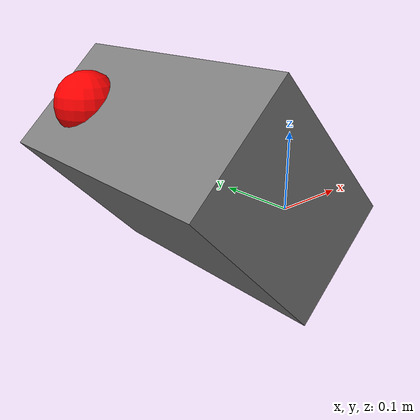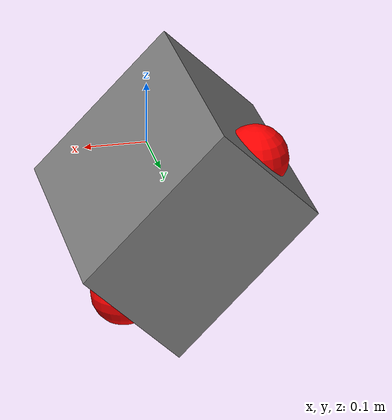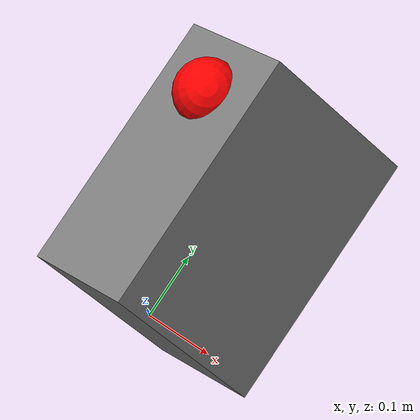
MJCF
<?xml version="1.0"?>
<mujoco model="suitcase">
  <!-- Assets -->
  <asset>
    <mesh name="suitcase_mesh" file="/home/elijah/Documents/projects/hdmi/active-adaptation/active_adaptation/assets_mjcf/objects/suitcase/suitcase.obj"/>
  </asset>

  <!-- World body -->
  <worldbody>
    <body name="suitcase_body">
      <freejoint name="suitcase_root"/>
      <inertial mass="2.0" pos="0 0 0" diaginertia="0.0334 0.02167 0.04167"/>

      <site name="suitcase_root" pos="0 0 0" size="0.02" rgba="1 0 0 1"/>
      <site name="left_hand_contact" pos="0.1 0.3 -0.1" size="0.05" rgba="1 0 0 1"/>
      <site name="right_hand_contact" pos="-0.1 0.3 0.1" size="0.05" rgba="1 0 0 1"/>
      <geom type="box" size="0.15 0.2 0.1" pos="0 0.18 0.0" quat="0.9211 0 0.3894 0"/>
    </body>
  </worldbody>

</mujoco>
